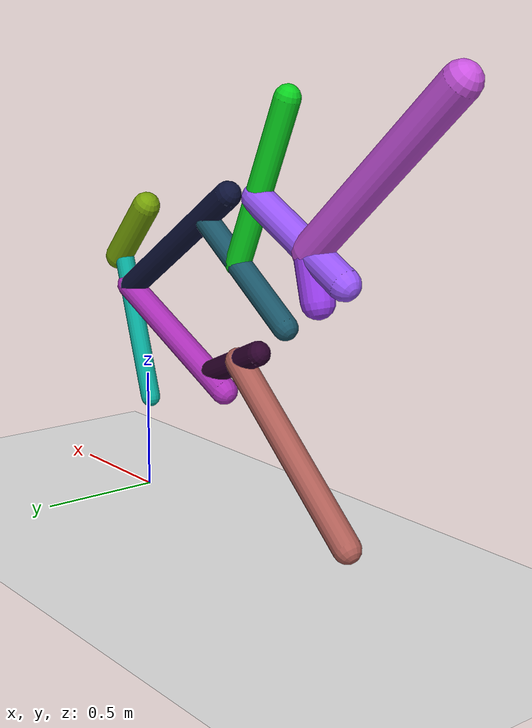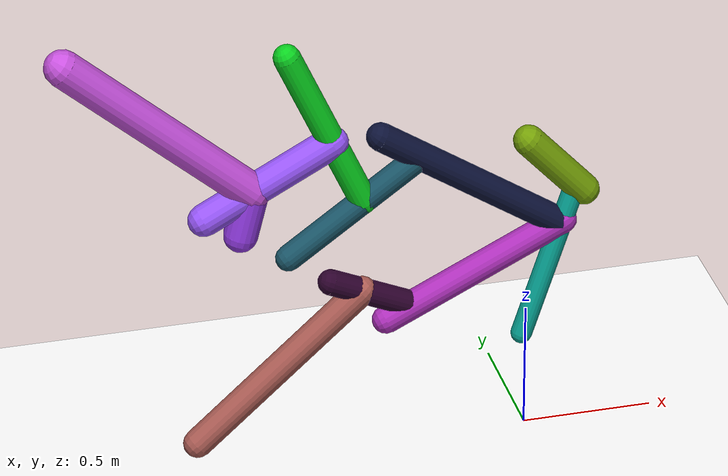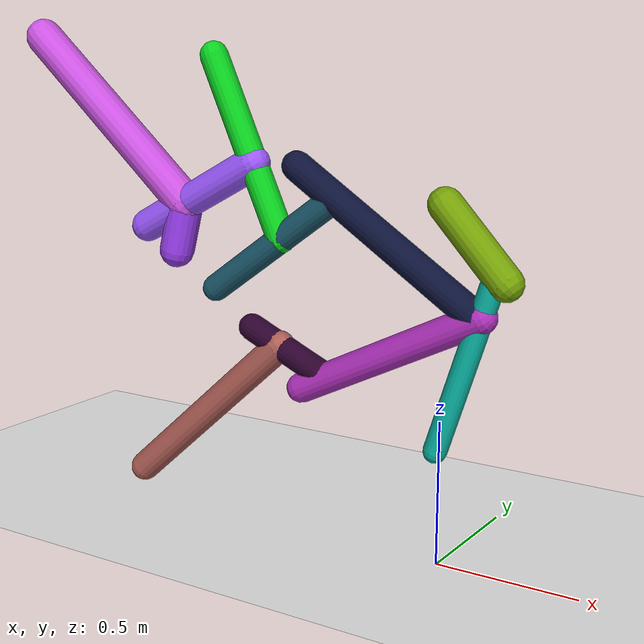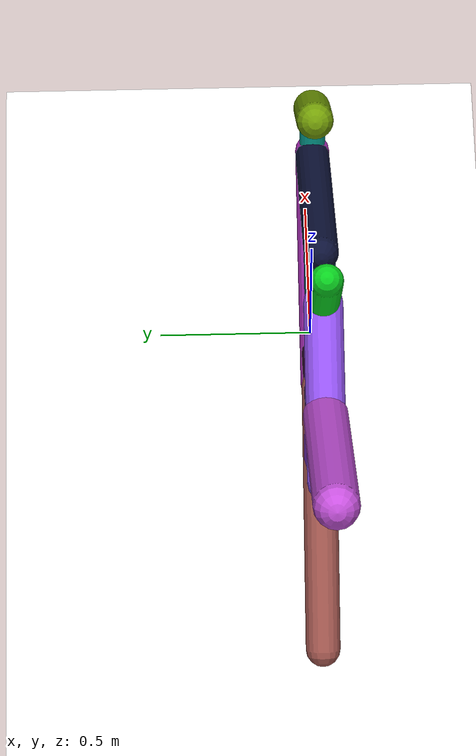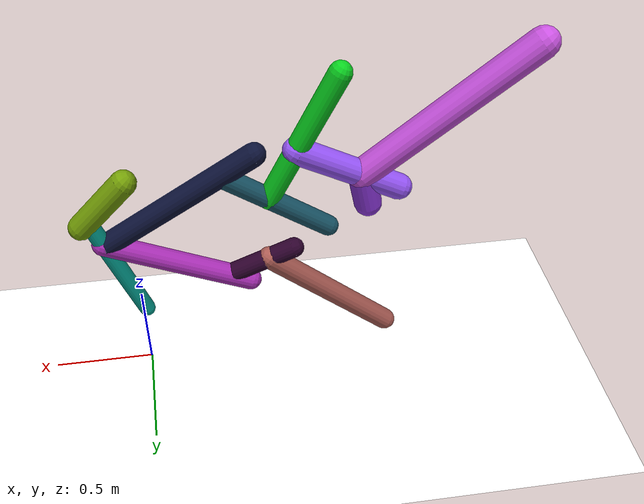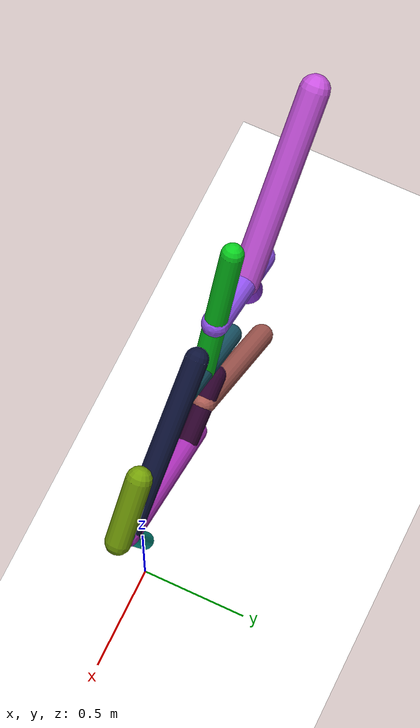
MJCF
<mujoco model="morphology">
  <option timestep="0.01"/>
  <default>
    <default class="/"/>
    <default class="0/"/>
    <default class="0/1/"/>
    <default class="0/1/2/"/>
    <default class="0/1/2/3/"/>
    <default class="0/1/2/3/4/"/>
    <default class="0/1/2/3/4/5/"/>
    <default class="0/1/2/3/4/5/6/"/>
    <default class="0/1/2/3/4/5/6/7/"/>
    <default class="0/1/2/3/4/5/6/7/8/"/>
    <default class="0/1/2/9/"/>
    <default class="0/1/2/9/10/"/>
  </default>
  <asset>
    <texture name="texplane" type="2d" builtin="checker" rgb1="0.10000000000000001 0.20000000000000001 0.29999999999999999" rgb2="0.20000000000000001 0.29999999999999999 0.40000000000000002" width="300" height="300"/>
    <material name="MatPlane" class="/" texture="texplane" texrepeat="20 20" specular="1" shininess="1" reflectance="0.5"/>
  </asset>
  <worldbody>
    <light name="//unnamed_light_0" class="/" directional="true" pos="0 0 1.5" dir="0 0 -1.3" cutoff="100" exponent="1" diffuse="1 1 1" specular="0.10000000000000001 0.10000000000000001 0.10000000000000001"/>
    <geom name="ground" class="/" type="plane" size="15 15 0.5" material="MatPlane" rgba="1 1 1 1"/>
    <site name="body" class="/" size="9.9999999999999995e-07 9.9999999999999995e-07 9.9999999999999995e-07" pos="0 0 1.2254236698150636"/>
    <body pos="0 0 1.2254236698150636" name="0/">
      <joint name="0/rootx/" class="/" type="slide" axis="1 0 0" limited="false" stiffness="0" armature="0" damping="0"/>
      <joint name="0/rootz/" class="/" type="slide" axis="0 0 1" limited="false" stiffness="0" armature="0" damping="0"/>
      <joint name="0/rooty/" class="/" type="hinge" axis="0 1 0" limited="false" stiffness="0" armature="0" damping="0"/>
      <geom name="0/geom" class="0/" type="capsule" contype="1" conaffinity="1" condim="3" size="0.059098935944711405" rgba="0.44873837889740853 0.61514706872164504 0.026430439503999814 1" friction="0.59999999999999998 0.10000000000000001 0.10000000000000001" fromto="0 0 0 0.21737533470299153 0 -0.23696815021591799"/>
      <site name="0/end0" class="0/" size="0.0050000000000000001" pos="0.21737533470299153 0 -0.23696815021591799"/>
      <site name="0/attach1" class="0/" size="9.9999999999999995e-07 9.9999999999999995e-07 9.9999999999999995e-07" pos="0.1859901043897198 0 -0.20275405696748924"/>
      <body pos="0.1859901043897198 0 -0.20275405696748924" name="0/1/">
        <joint name="0/1/joint/" class="0/" type="hinge" axis="0 1 0" limited="true" range="-59.632796424934853 59.632796424934853"/>
        <geom name="0/1/geom" class="0/1/" type="capsule" contype="1" conaffinity="1" condim="3" size="0.041095881994889887" rgba="0.025674486533716845 0.66095272034039521 0.60043000789036283 1" friction="0.59999999999999998 0.10000000000000001 0.10000000000000001" fromto="0 0 0 -0.2018692448131687 0 -0.62632923840919674"/>
        <site name="0/1/end1" class="0/1/" size="0.0050000000000000001" pos="-0.2018692448131687 0 -0.62632923840919674"/>
        <site name="0/1/attach2" class="0/1/" size="9.9999999999999995e-07 9.9999999999999995e-07 9.9999999999999995e-07" pos="-0.049693976461963996 0 -0.1541829239999023"/>
        <body pos="-0.049693976461963996 0 -0.1541829239999023" name="0/1/2/">
          <joint name="0/1/2/joint/" class="0/1/" type="hinge" axis="0 1 0" limited="true" range="-52.142063850045993 52.142063850045993"/>
          <geom name="0/1/2/geom" class="0/1/2/" type="capsule" contype="1" conaffinity="1" condim="3" size="0.054167861666898499" rgba="0.67173712910097405 0.18197056509653087 0.7217842464647285 1" friction="0.59999999999999998 0.10000000000000001 0.10000000000000001" fromto="0 0 0 -0.67982004813608499 0 -0.33465410092288023"/>
          <site name="0/1/2/end2" class="0/1/2/" size="0.0050000000000000001" pos="-0.67982004813608499 0 -0.33465410092288023"/>
          <site name="0/1/2/attach3" class="0/1/2/" size="9.9999999999999995e-07 9.9999999999999995e-07 9.9999999999999995e-07" pos="-0.012400704452932391 0 -0.0061044781054702272"/>
          <body pos="-0.012400704452932391 0 -0.0061044781054702272" name="0/1/2/3/">
            <joint name="0/1/2/3/joint/" class="0/1/2/" type="hinge" axis="0 1 0" limited="true" range="-38.993480727756406 38.993480727756406"/>
            <geom name="0/1/2/3/geom" class="0/1/2/3/" type="capsule" contype="1" conaffinity="1" condim="3" size="0.054144242045618469" rgba="0.048067546361043267 0.070661346928479252 0.21605049824466427 1" friction="0.59999999999999998 0.10000000000000001 0.10000000000000001" fromto="0 0 0 -0.69011797826741672 0 0.45702906302112911"/>
            <site name="0/1/2/3/end3" class="0/1/2/3/" size="0.0050000000000000001" pos="-0.69011797826741672 0 0.45702906302112911"/>
            <site name="0/1/2/3/attach4" class="0/1/2/3/" size="9.9999999999999995e-07 9.9999999999999995e-07 9.9999999999999995e-07" pos="-0.53630855530180388 0 0.35516912214801144"/>
            <body pos="-0.53630855530180388 0 0.35516912214801144" name="0/1/2/3/4/">
              <joint name="0/1/2/3/4/joint/" class="0/1/2/3/" type="hinge" axis="0 1 0" limited="true" range="-64.964051718785413 64.964051718785413"/>
              <geom name="0/1/2/3/4/geom" class="0/1/2/3/4/" type="capsule" contype="1" conaffinity="1" condim="3" size="0.049323320496127018" rgba="0.09602455569985302 0.32613411396477543 0.39919608362274428 1" friction="0.59999999999999998 0.10000000000000001 0.10000000000000001" fromto="0 0 0 -0.50457690725629734 0 -0.36312608843370364"/>
              <site name="0/1/2/3/4/end4" class="0/1/2/3/4/" size="0.0050000000000000001" pos="-0.50457690725629734 0 -0.36312608843370364"/>
              <site name="0/1/2/3/4/attach5" class="0/1/2/3/4/" size="9.9999999999999995e-07 9.9999999999999995e-07 9.9999999999999995e-07" pos="-0.21860411273181349 0 -0.1573216198170217"/>
              <body pos="-0.21860411273181349 0 -0.1573216198170217" name="0/1/2/3/4/5/">
                <joint name="0/1/2/3/4/5/joint/" class="0/1/2/3/4/" type="hinge" axis="0 1 0" limited="true" range="-34.369595721545579 34.369595721545579"/>
                <geom name="0/1/2/3/4/5/geom" class="0/1/2/3/4/5/" type="capsule" contype="1" conaffinity="1" condim="3" size="0.051393328544879838" rgba="0.037490146237384669 0.80364621172356798 0.12185049107488977 1" friction="0.59999999999999998 0.10000000000000001 0.10000000000000001" fromto="0 0 0 -0.28536585589887892 0 0.63379695203335551"/>
                <site name="0/1/2/3/4/5/end5" class="0/1/2/3/4/5/" size="0.0050000000000000001" pos="-0.28536585589887892 0 0.63379695203335551"/>
                <site name="0/1/2/3/4/5/attach6" class="0/1/2/3/4/5/" size="9.9999999999999995e-07 9.9999999999999995e-07 9.9999999999999995e-07" pos="-0.11732295716652447 0 0.26057403546566082"/>
                <body pos="-0.11732295716652447 0 0.26057403546566082" name="0/1/2/3/4/5/6/">
                  <joint name="0/1/2/3/4/5/6/joint/" class="0/1/2/3/4/5/" type="hinge" axis="0 1 0" limited="true" range="-62.696803327433052 62.696803327433052"/>
                  <geom name="0/1/2/3/4/5/6/geom" class="0/1/2/3/4/5/6/" type="capsule" contype="1" conaffinity="1" condim="3" size="0.061213809284803813" rgba="0.59243723878992816 0.3368354972469203 0.97374320154160665 1" friction="0.59999999999999998 0.10000000000000001 0.10000000000000001" fromto="0 0 0 -0.48523639961911502 0 -0.25939568977513905"/>
                  <site name="0/1/2/3/4/5/6/end6" class="0/1/2/3/4/5/6/" size="0.0050000000000000001" pos="-0.48523639961911502 0 -0.25939568977513905"/>
                  <site name="0/1/2/3/4/5/6/attach7" class="0/1/2/3/4/5/6/" size="9.9999999999999995e-07 9.9999999999999995e-07 9.9999999999999995e-07" pos="-0.30367862648955435 0 -0.16233927803037315"/>
                  <body pos="-0.30367862648955435 0 -0.16233927803037315" name="0/1/2/3/4/5/6/7/">
                    <geom name="0/1/2/3/4/5/6/7/geom" class="0/1/2/3/4/5/6/7/" type="capsule" contype="1" conaffinity="1" condim="3" size="0.064914162063680503" rgba="0.58251228788402698 0.23157571592995652 0.9052050909981646 1" friction="0.59999999999999998 0.10000000000000001 0.10000000000000001" fromto="0 0 0 -0.045019485695720007 0 -0.17939091791675776"/>
                    <site name="0/1/2/3/4/5/6/7/end7" class="0/1/2/3/4/5/6/7/" size="0.0050000000000000001" pos="-0.045019485695720007 0 -0.17939091791675776"/>
                    <site name="0/1/2/3/4/5/6/7/attach8" class="0/1/2/3/4/5/6/7/" size="9.9999999999999995e-07 9.9999999999999995e-07 9.9999999999999995e-07" pos="-0.0003334761376959179 0 -0.0013288155011129579"/>
                    <body pos="-0.0003334761376959179 0 -0.0013288155011129579" name="0/1/2/3/4/5/6/7/8/">
                      <joint name="0/1/2/3/4/5/6/7/8/joint/" class="0/1/2/3/4/5/6/7/" type="hinge" axis="0 1 0" limited="true" range="-42.664170358667114 42.664170358667114"/>
                      <geom name="0/1/2/3/4/5/6/7/8/geom" class="0/1/2/3/4/5/6/7/8/" type="capsule" contype="1" conaffinity="1" condim="3" size="0.069663978272099206" rgba="0.77299302616392251 0.31731267611501102 0.86052717955123792 1" friction="0.59999999999999998 0.10000000000000001 0.10000000000000001" fromto="0 0 0 -0.68713299147332518 0 0.60516997900092662"/>
                      <site name="0/1/2/3/4/5/6/7/8/end8" class="0/1/2/3/4/5/6/7/8/" size="0.0050000000000000001" pos="-0.68713299147332518 0 0.60516997900092662"/>
                    </body>
                  </body>
                </body>
              </body>
            </body>
          </body>
          <site name="0/1/2/attach9" class="0/1/2/" size="9.9999999999999995e-07 9.9999999999999995e-07 9.9999999999999995e-07" pos="-0.5751400457764565 0 -0.2831234169274387"/>
          <body pos="-0.5751400457764565 0 -0.2831234169274387" name="0/1/2/9/">
            <geom name="0/1/2/9/geom" class="0/1/2/9/" type="capsule" contype="1" conaffinity="1" condim="3" size="0.049412903411067459" rgba="0.1709165408336174 0.0051156012447892696 0.17045805709121187 1" friction="0.59999999999999998 0.10000000000000001 0.10000000000000001" fromto="0 0 0 -0.31797198502975232 0 0.14176114103741844"/>
            <site name="0/1/2/9/end9" class="0/1/2/9/" size="0.0050000000000000001" pos="-0.31797198502975232 0 0.14176114103741844"/>
            <site name="0/1/2/9/attach10" class="0/1/2/9/" size="9.9999999999999995e-07 9.9999999999999995e-07 9.9999999999999995e-07" pos="-0.19815649741723501 0 0.088343918648106867"/>
            <body pos="-0.19815649741723501 0 0.088343918648106867" name="0/1/2/9/10/">
              <geom name="0/1/2/9/10/geom" class="0/1/2/9/10/" type="capsule" contype="1" conaffinity="1" condim="3" size="0.055259669513512411" rgba="0.66304133524382358 0.35641432556386243 0.32608351138805602 1" friction="0.59999999999999998 0.10000000000000001 0.10000000000000001" fromto="0 0 0 -0.63622171740261368 0 -0.57370719236597401"/>
              <site name="0/1/2/9/10/end10" class="0/1/2/9/10/" size="0.0050000000000000001" pos="-0.63622171740261368 0 -0.57370719236597401"/>
            </body>
          </body>
        </body>
      </body>
      <camera name="0/side" class="0/" mode="trackcom" pos="0.40000000000000002 -4 0.20000000000000001" quat="0.70699999999999996 0.70699999999999996 0 0"/>
    </body>
  </worldbody>
  <actuator>
    <motor name="0/1/motor" class="0/1/" ctrllimited="true" ctrlrange="-1 1" gear="51" joint="0/1/joint/"/>
    <motor name="0/1/2/motor" class="0/1/2/" ctrllimited="true" ctrlrange="-1 1" gear="50" joint="0/1/2/joint/"/>
    <motor name="0/1/2/3/motor" class="0/1/2/3/" ctrllimited="true" ctrlrange="-1 1" gear="84" joint="0/1/2/3/joint/"/>
    <motor name="0/1/2/3/4/motor" class="0/1/2/3/4/" ctrllimited="true" ctrlrange="-1 1" gear="89" joint="0/1/2/3/4/joint/"/>
    <motor name="0/1/2/3/4/5/motor" class="0/1/2/3/4/5/" ctrllimited="true" ctrlrange="-1 1" gear="69" joint="0/1/2/3/4/5/joint/"/>
    <motor name="0/1/2/3/4/5/6/motor" class="0/1/2/3/4/5/6/" ctrllimited="true" ctrlrange="-1 1" gear="83" joint="0/1/2/3/4/5/6/joint/"/>
    <motor name="0/1/2/3/4/5/6/7/8/motor" class="0/1/2/3/4/5/6/7/8/" ctrllimited="true" ctrlrange="-1 1" gear="77" joint="0/1/2/3/4/5/6/7/8/joint/"/>
  </actuator>
  <sensor>
    <subtreelinvel name="velocity" body="0/"/>
  </sensor>
</mujoco>
